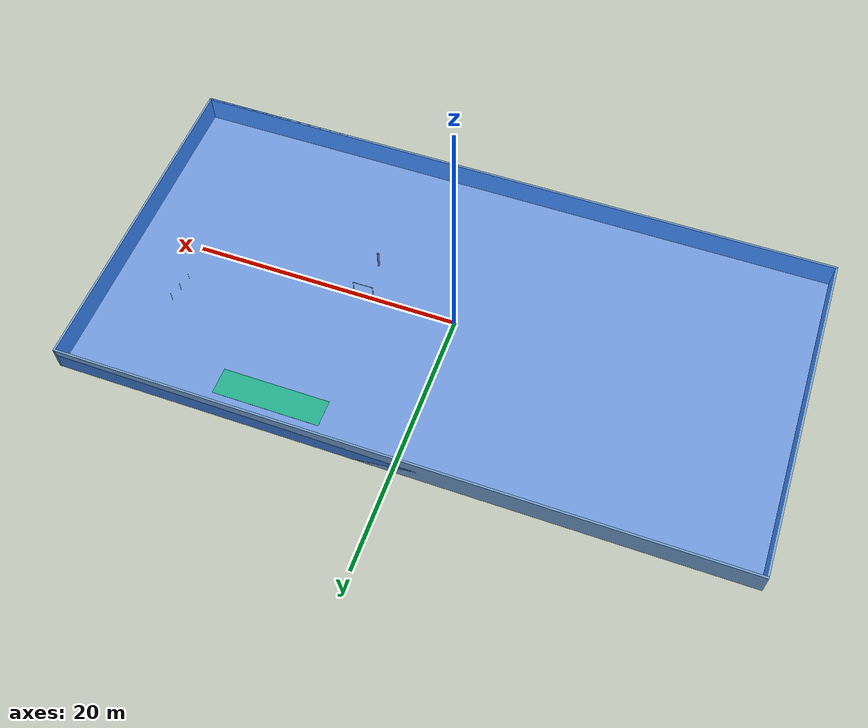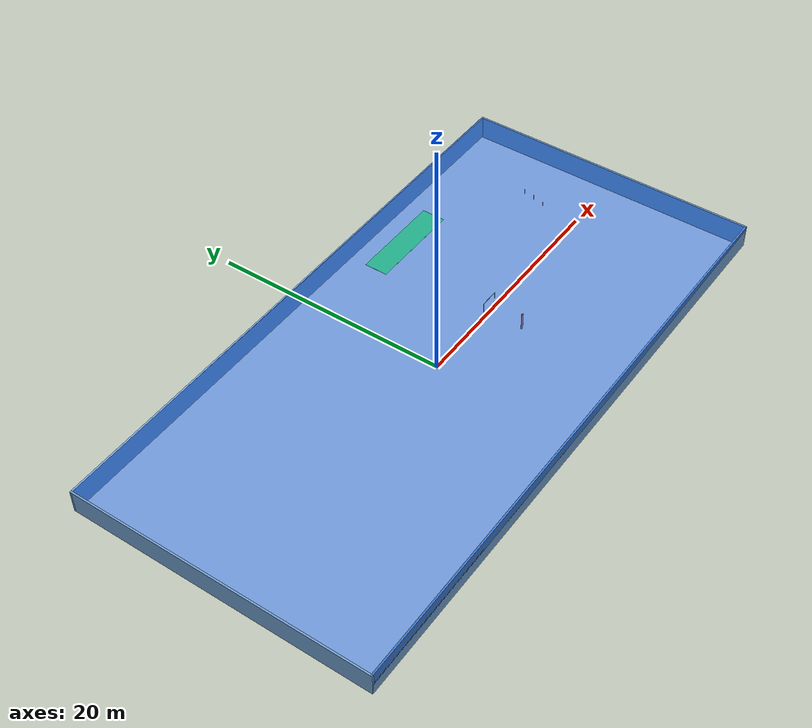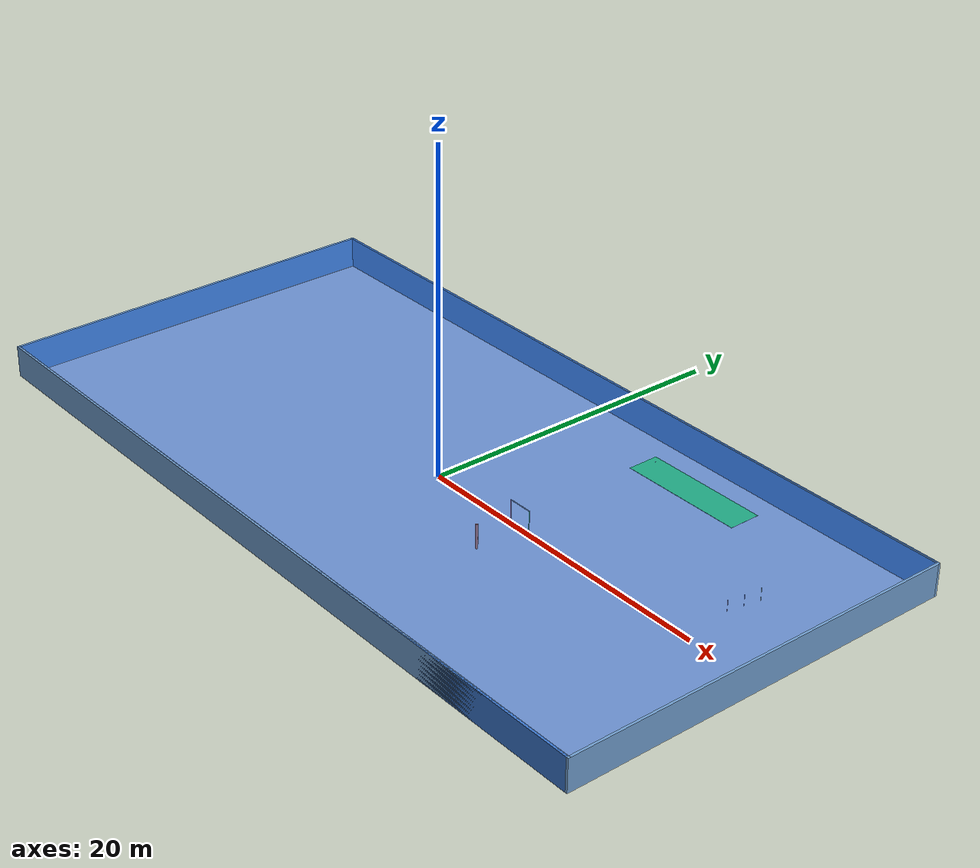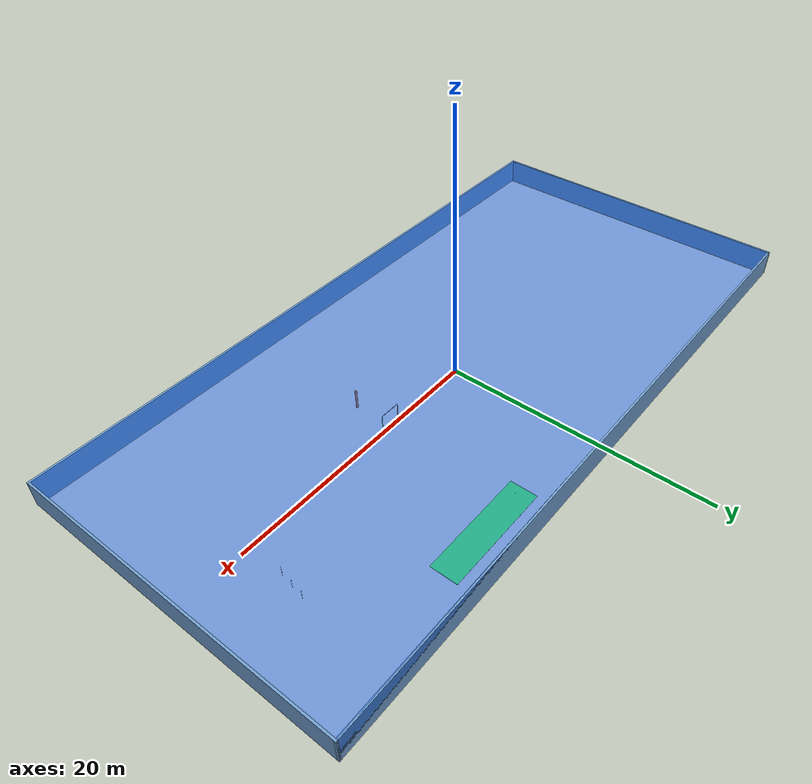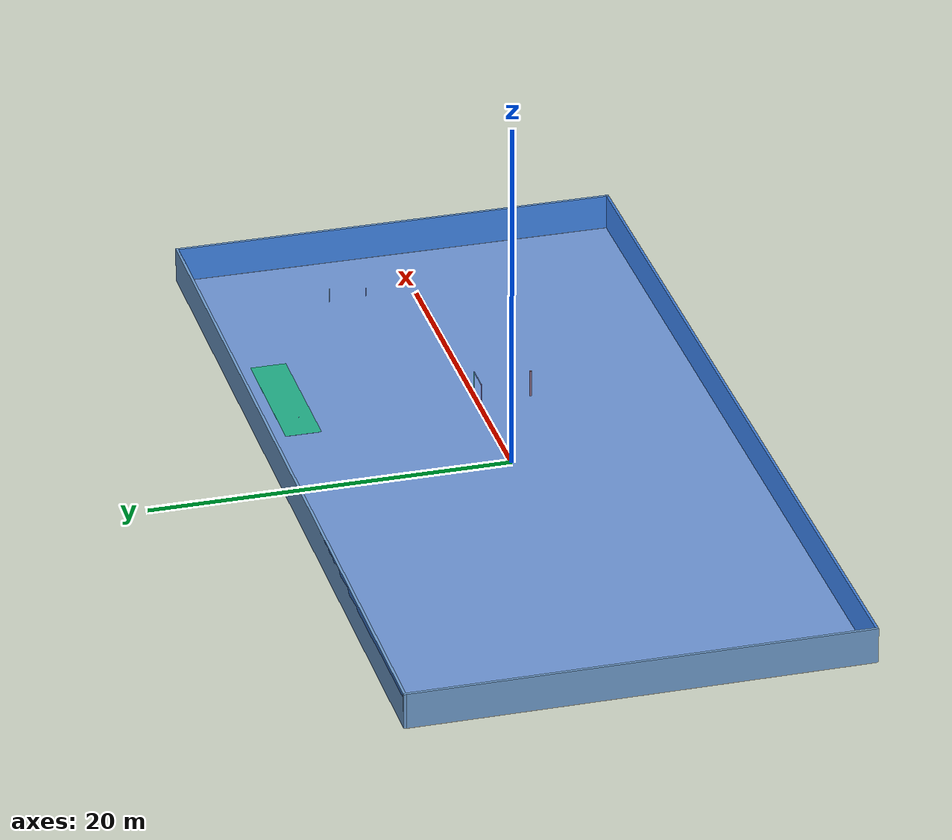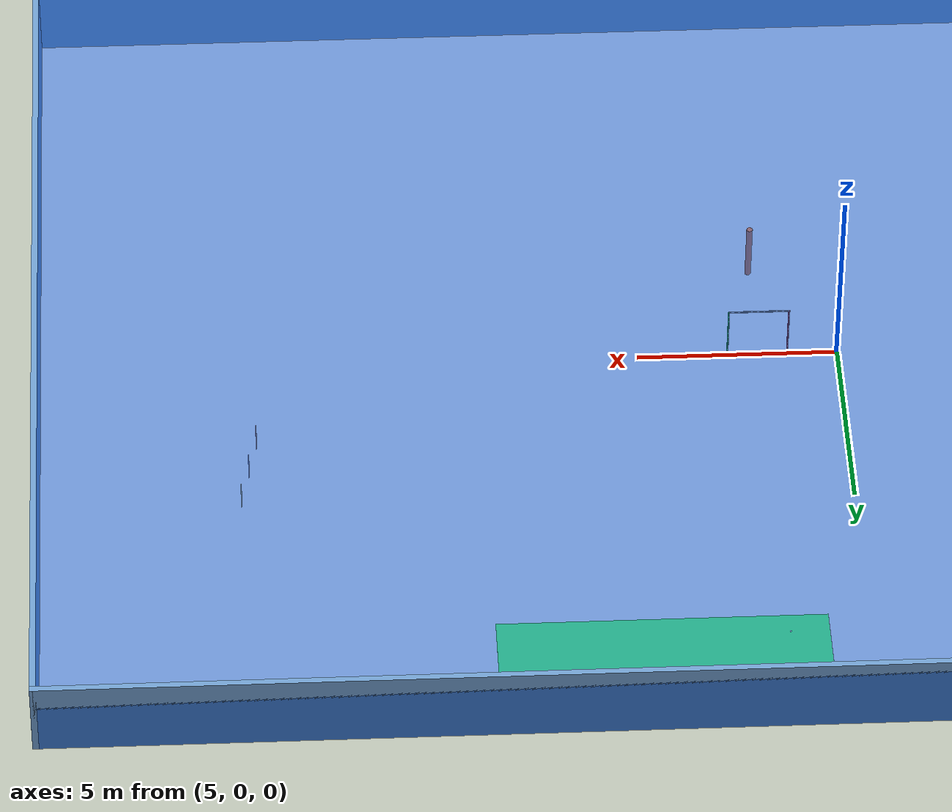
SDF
<sdf version="1.7">
 <world name="sauvc_world">
  <gravity>0 0 -9.81</gravity>
  <physics name="1ms" type="dart">
   <max_step_size>0.001</max_step_size>
   <real_time_factor>1.0</real_time_factor>
  </physics>
  <plugin filename="gz-sim-physics-system" name="gz::sim::systems::Physics"/>
  <plugin filename="gz-sim-user-commands-system" name="gz::sim::systems::UserCommands"/>
  <plugin filename="gz-sim-scene-broadcaster-system" name="gz::sim::systems::SceneBroadcaster"/>
  <plugin filename="libgz-sim-buoyancy-system.so" name="gz::sim::systems::Buoyancy">
   <fluid_density>1000</fluid_density>
   <graded_buoyancy>true</graded_buoyancy>
   <graded_buoyancy_max_depth>2.0</graded_buoyancy_max_depth>
   <graded_buoyancy_above_depth>1.0</graded_buoyancy_above_depth>
   <linear_damping>0.5</linear_damping>
   <angular_damping>0.5</angular_damping>
   <surface>0.0</surface>
   <density_change_rate>0.0</density_change_rate>
  </plugin>
  <light type="directional" name="sun">
   <pose>0 0 10 0 0 0</pose>
   <diffuse>1 1 1 1</diffuse>
   <specular>0.5 0.5 0.5 1</specular>
   <attenuation>
    <range>1000</range>
    <constant>0.9</constant>
    <linear>0.01</linear>
    <quadratic>0.001</quadratic>
   </attenuation>
   <direction>-0.5 0.1 -0.9</direction>
  </light>
  <include><uri>model://pool_ground</uri></include>
  <include><uri>model://wall</uri></include>
  <include><uri>model://gate</uri><pose>7 0 0 0 0 0</pose></include>
  <include><uri>model://green_mat</uri><pose>10 10 0 0 0 0</pose></include>
  <include><uri>model://orange_flare</uri><pose>7 -3 0 0 0 0</pose></include>
  <include><uri>model://yellow_flare</uri><pose>20 5 0.2 0 0 0</pose></include>
  <include><uri>model://blue_flare</uri><pose>19.8 4 0.2 0 0 0</pose></include>
  <include><uri>model://red_flare</uri><pose>19.6 3 0.2 0 0 0</pose></include>
  <include><uri>model://golf_ball</uri><pose>7 10 0.2 0 0 0</pose></include>
 </world>
</sdf>

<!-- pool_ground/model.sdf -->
<sdf version="1.7">
  <model name="pool_ground">
    <static>true</static>

    <link name="link">
      <collision name="collision">
        <geometry>
          <plane>
            <normal>0 0 1</normal>
            <size>50 25</size>
          </plane>
        </geometry>
      </collision>
      <visual name="visual">
        <cast_shadows>false</cast_shadows>
        <geometry>
          <plane>
            <normal>0 0 1</normal>
            <size>50 25</size>
          </plane>
        </geometry>
      </visual>
    </link>

    <link name='water_visual'>
      <pose>0 0 1.0 0 0 0</pose> <visual name='water_surface'>
        <cast_shadows>false</cast_shadows>
        <geometry>
          <box>
            <size>49.85 25.15 2</size>
          </box>
        </geometry>
        <material>
          <ambient>0.1 0.3 0.8 0.5</ambient>
          <diffuse>0.1 0.4 0.9 0.5</diffuse>
        </material>
      </visual>
    </link>
  </model>
</sdf>

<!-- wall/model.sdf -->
<sdf version='1.7'>
  <model name='wall'>
    <static>true</static>
    <link name='Wall_0'>
      <pose>0 12.5 0 0 0 0</pose>
      <collision name='Wall_0_Collision'>
        <geometry>
          <box><size>50.15 0.15 2</size></box>
        </geometry>
        <pose>0 0 1 0 0 0</pose>
      </collision>
      <visual name='Wall_0_Visual'>
        <pose>0 0 1 0 0 0</pose>
        <geometry>
          <box><size>50.15 0.15 2</size></box>
        </geometry>
        <material>
          <ambient>0.44 0.62 0.81 1</ambient>
          <diffuse>0.44 0.62 0.81 1</diffuse>
          <specular>0.1 0.1 0.1 1</specular>
        </material>
      </visual>
    </link>
    <link name='Wall_2'>
      <collision name='Wall_2_Collision'>
        <geometry>
          <box><size>25.15 0.15 2</size></box>
        </geometry>
        <pose>0 0 1 0 0 0</pose>
      </collision>
      <visual name='Wall_2_Visual'>
        <pose>0 0 1 0 0 0</pose>
        <geometry>
          <box><size>25.15 0.15 2</size></box>
        </geometry>
        <material>
          <ambient>0.44 0.62 0.81 1</ambient>
          <diffuse>0.44 0.62 0.81 1</diffuse>
          <specular>0.1 0.1 0.1 1</specular>
        </material>
      </visual>
      <pose>-25 0 0 0 0 -1.5708</pose>
    </link>
    <link name='Wall_4'>
      <collision name='Wall_4_Collision'>
        <geometry>
          <box><size>25.15 0.15 2</size></box>
        </geometry>
        <pose>0 0 1 0 0 0</pose>
      </collision>
      <visual name='Wall_4_Visual'>
        <pose>0 0 1 0 0 0</pose>
        <geometry>
          <box><size>25.15 0.15 2</size></box>
        </geometry>
        <material>
          <ambient>0.44 0.62 0.81 1</ambient>
          <diffuse>0.44 0.62 0.81 1</diffuse>
          <specular >0.1 0.1 0.1 1</specular>
        </material>
      </visual>
      <pose>25 0 0 0 0 1.5708</pose>
    </link>
    <link name='Wall_6'>
      <collision name='Wall_6_Collision'>
        <geometry>
          <box><size>50.15 0.15 2</size></box>
        </geometry>
        <pose>0 0 1 0 0 0</pose>
      </collision>
      <visual name='Wall_6_Visual'>
        <pose>0 0 1 0 0 0</pose>
        <geometry>
          <box><size>50.15 0.15 2</size></box>
        </geometry>
        <material>
          <ambient>0.44 0.62 0.81 1</ambient>
          <diffuse>0.44 0.62 0.81 1</diffuse>
          <specular>0.1 0.1 0.1 1</specular>
        </material>
      </visual>
      <pose>0 -12.5 0 0 0 0</pose>
    </link>
  </model>
</sdf>

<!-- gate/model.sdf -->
<sdf version='1.7'>
  <model name='gate'>
    <static>true</static>

    <link name='left_post'>
      <pose>-0.75 0 0.75 0 0 0</pose>
      <visual name='post_visual'>
        <geometry>
          <cylinder>
            <radius>0.02</radius>
            <length>1.5</length>
          </cylinder>
        </geometry>
        <material>
          <ambient>0.8 0.1 0.1 1</ambient>
          <diffuse>1.0 0.2 0.2 1</diffuse>
          <specular>0.1 0.1 0.1 1</specular>
        </material>
      </visual>
      <collision name='post_collision'>
        <geometry>
          <cylinder>
            <radius>0.02</radius>
            <length>1.5</length>
          </cylinder>
        </geometry>
      </collision>
    </link>

    <link name='right_post'>
      <pose>0.75 0 0.75 0 0 0</pose>
      <visual name='post_visual'>
        <geometry>
          <cylinder>
            <radius>0.02</radius>
            <length>1.5</length>
          </cylinder>
        </geometry>
        <material>
          <ambient>0.1 0.8 0.1 1</ambient>
          <diffuse>0.2 1.0 0.2 1</diffuse>
          <specular>0.1 0.1 0.1 1</specular>
        </material>
      </visual>
      <collision name='post_collision'>
        <geometry>
          <cylinder>
            <radius>0.02</radius>
            <length>1.5</length>
          </cylinder>
        </geometry>
      </collision>
    </link>

    <link name='top_bar'>
      <pose>0 0 1.5 0 1.5707 0</pose>
      <visual name='bar_visual'>
        <geometry>
          <cylinder>
            <radius>0.02</radius>
            <length>1.5</length>
          </cylinder>
        </geometry>
        <material>
          <ambient>0.3 0.3 0.3 1</ambient>
          <diffuse>0.7 0.7 0.7 1</diffuse>
          <specular>0.1 0.1 0.1 1</specular>
        </material>
      </visual>
      <collision name='bar_collision'>
        <geometry>
          <cylinder>
            <radius>0.02</radius>
            <length>1.5</length>
          </cylinder>
        </geometry>
      </collision>
    </link>

    <joint name='left_post_joint' type='fixed'>
      <parent>top_bar</parent>
      <child>left_post</child>
    </joint>

    <joint name='right_post_joint' type='fixed'>
      <parent>top_bar</parent>
      <child>right_post</child>
    </joint>

  </model>
</sdf>

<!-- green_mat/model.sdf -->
<sdf version='1.7'>
  <model name='green_mat'>
    <static>true</static>
    <link name='link'>
      <visual name='visual'>
        <geometry>
          <box>
            <size>8 2 0.01</size>
          </box>
        </geometry>
        <material>
          <ambient>0.1 0.5 0.1 1</ambient>
          <diffuse>0.2 1.0 0.2 1</diffuse>
          <specular>0.1 0.1 0.1 1</specular>
        </material>
      </visual>
      <collision name='collision'>
        <geometry>
          <box>
            <size>8 2 0.01</size>
          </box>
        </geometry>
      </collision>
    </link>
  </model>
</sdf>

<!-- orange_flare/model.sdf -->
<sdf version='1.7'>
  <model name='orange_flare'>
    <static>true</static>
    <link name='link'>
      <pose>0 0 0.75 0 0 0</pose>
      <visual name='visual'>
        <geometry>
          <cylinder>
            <radius>0.075</radius>
            <length>1.5</length>
          </cylinder>
        </geometry>
        <material>
          <ambient>1.0 0.4 0.0 1</ambient>
          <diffuse>1.0 0.4 0.0 1</diffuse>
          <specular>0.1 0.1 0.1 1</specular>
        </material>
      </visual>
      <collision name='collision'>
        <geometry>
          <cylinder>
            <radius>0.075</radius>
            <length>1.5</length>
          </cylinder>
        </geometry>
      </collision>
    </link>
  </model>
</sdf>

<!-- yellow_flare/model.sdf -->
<sdf version='1.7'>
  <model name='yellow_flare'>
    <static>false</static>
    <link name='link'>
      <pose>0 0 0.4 0 0 0</pose>

      <inertial>
        <mass>1</mass>
        <inertia>
          <ixx>0.145833</ixx>
          <ixy>0</ixy>
          <ixz>0</ixz>
          <iyy>0.145833</iyy>
          <iyz>0</iyz>
          <izz>0.125</izz>
        </inertia>
      </inertial>

      <visual name='visual'>
        <geometry>
          <cylinder>
            <radius>0.01</radius>
            <length>0.8</length>
          </cylinder>
        </geometry>
        <material>
          <ambient>1.0 1.0 0.3 1</ambient>
          <diffuse>1.0 1.0 0.7 1</diffuse>
          <specular>0.1 0.1 0.1 1</specular>
        </material>
      </visual>

      <collision name='collision'>
        <geometry>
          <cylinder>
            <radius>0.01</radius>
            <length>0.8</length>
          </cylinder>
        </geometry>
      </collision>
    </link>
  </model>
</sdf>

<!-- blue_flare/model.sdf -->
<sdf version='1.7'>
  <model name='blue_flare'>
    <static>false</static>
    <link name='link'>
      <pose>0 0 0.4 0 0 0</pose>

      <inertial>
        <mass>1</mass>
        <inertia>
          <ixx>0.145833</ixx>
          <ixy>0</ixy>
          <ixz>0</ixz>
          <iyy>0.145833</iyy>
          <iyz>0</iyz>
          <izz>0.125</izz>
        </inertia>
      </inertial>

      <visual name='visual'>
        <geometry>
          <cylinder>
            <radius>0.01</radius>
            <length>0.8</length>
          </cylinder>
        </geometry>
        <material>
          <ambient>0.3 0.3 1.0 1</ambient>
          <diffuse>0.7 0.7 1.0 1</diffuse>
          <specular>0.1 0.1 0.1 1</specular>
        </material>
      </visual>

      <collision name='collision'>
        <geometry>
          <cylinder>
            <radius>0.01</radius>
            <length>0.8</length>
          </cylinder>
        </geometry>
      </collision>
    </link>
  </model>
</sdf>

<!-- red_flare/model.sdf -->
<sdf version='1.7'>
  <model name='red_flare'>
    <static>false</static>
    <link name='link'>
      <pose>0 0 0.4 0 0 0</pose>

      <inertial>
        <mass>1</mass>
        <inertia>
          <ixx>0.145833</ixx>
          <ixy>0</ixy>
          <ixz>0</ixz>
          <iyy>0.145833</iyy>
          <iyz>0</iyz>
          <izz>0.125</izz>
        </inertia>
      </inertial>

      <visual name='visual'>
        <geometry>
          <cylinder>
            <radius>0.01</radius>
            <length>0.8</length>
          </cylinder>
        </geometry>
        <material>
          <ambient>1.0 0.3 0.3 1</ambient>
          <diffuse>1.0 0.7 0.7 1</diffuse>
          <specular>0.1 0.1 0.1 1</specular>
        </material>
      </visual>

      <collision name='collision'>
        <geometry>
          <cylinder>
            <radius>0.01</radius>
            <length>0.8</length>
          </cylinder>
        </geometry>
      </collision>
    </link>
  </model>
</sdf>

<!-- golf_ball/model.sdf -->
<sdf version='1.7'>
  <model name='golf_ball'>
    <static>false</static>
    <link name='link'>
      <pose>0 0 0.3 0 0 0</pose>

      <inertial>
        <mass>0.046</mass>
        <inertia>
          <ixx>8.4e-06</ixx>
          <ixy>0</ixy>
          <ixz>0</ixz>
          <iyy>8.4e-06</iyy>
          <iyz>0</iyz>
          <izz>8.4e-06</izz>
        </inertia>
      </inertial>

      <visual name='visual'>
        <geometry>
          <sphere>
            <radius>0.02135</radius>
          </sphere>
        </geometry>
        <material>
          <ambient>1 1 1 1</ambient>
          <diffuse>1 1 1 1</diffuse>
          <specular>0.2 0.2 0.2 1</specular>
        </material>
      </visual>

      <collision name='collision'>
        <geometry>
          <sphere>
            <radius>0.02135</radius>
          </sphere>
        </geometry>
      </collision>
    </link>
  </model>
</sdf>
